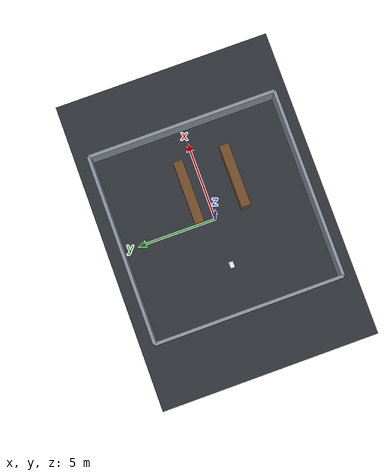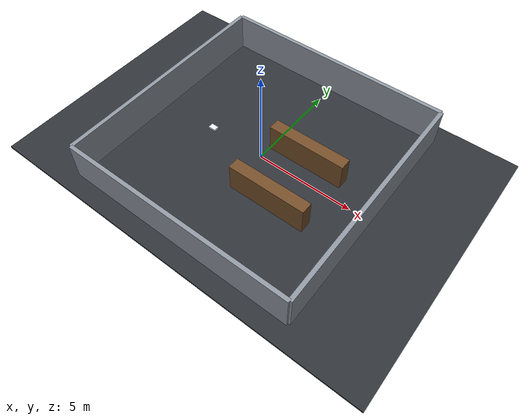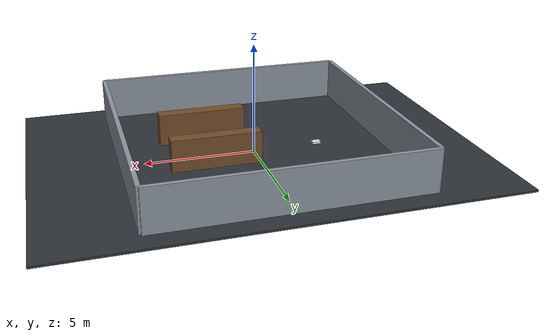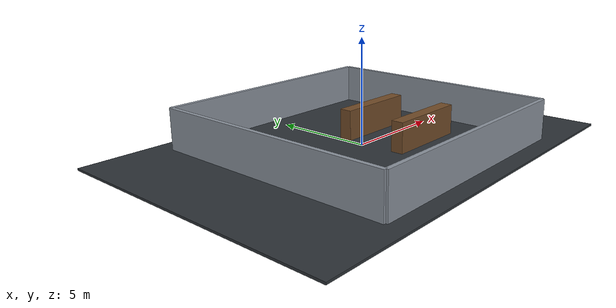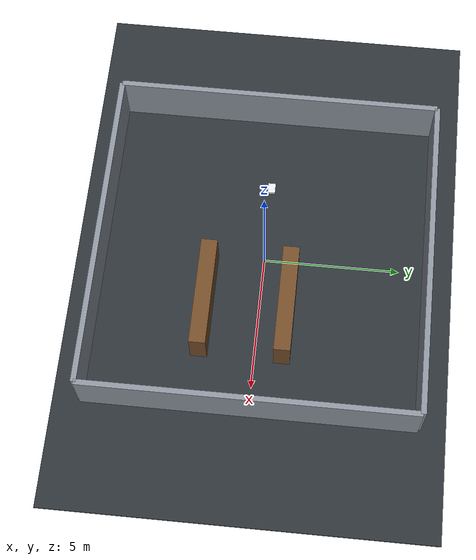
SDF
<?xml version="1.0"?>
<sdf version="1.10"><world name="openpatrol_warehouse">
  <physics name="1ms" type="ignored"><max_step_size>0.001</max_step_size><real_time_factor>1</real_time_factor></physics>
  <plugin filename="gz-sim-physics-system" name="gz::sim::systems::Physics"/><plugin filename="gz-sim-user-commands-system" name="gz::sim::systems::UserCommands"/><plugin filename="gz-sim-scene-broadcaster-system" name="gz::sim::systems::SceneBroadcaster"/><plugin filename="gz-sim-sensors-system" name="gz::sim::systems::Sensors"><render_engine>ogre2</render_engine></plugin><plugin filename="gz-sim-imu-system" name="gz::sim::systems::Imu"/>
  <scene><ambient>.35 .35 .35 1</ambient><background>.08 .1 .12 1</background></scene>
  <light name="sun" type="directional"><pose>0 0 10 0 0 0</pose><diffuse>.8 .8 .8 1</diffuse><direction>-.4 .2 -1</direction></light>
  <model name="ground"><static>true</static><link name="link"><collision name="collision"><geometry><box><size>20 14 .1</size></box></geometry></collision><visual name="visual"><geometry><box><size>20 14 .1</size></box></geometry><material><diffuse>.18 .2 .22 1</diffuse></material></visual></link></model>
  <!-- A bounded building is essential for meaningful lidar/SLAM testing. The
       perimeter also prevents a simulated patrol from leaving the test site. -->
  <model name="north_wall"><static>true</static><pose>0 6 1 0 0 0</pose><link name="link"><collision name="collision"><geometry><box><size>12 .2 2</size></box></geometry></collision><visual name="visual"><geometry><box><size>12 .2 2</size></box></geometry><material><diffuse>.55 .58 .62 1</diffuse></material></visual></link></model>
  <model name="south_wall"><static>true</static><pose>0 -6 1 0 0 0</pose><link name="link"><collision name="collision"><geometry><box><size>12 .2 2</size></box></geometry></collision><visual name="visual"><geometry><box><size>12 .2 2</size></box></geometry><material><diffuse>.55 .58 .62 1</diffuse></material></visual></link></model>
  <model name="east_wall"><static>true</static><pose>6 0 1 0 0 0</pose><link name="link"><collision name="collision"><geometry><box><size>.2 12 2</size></box></geometry></collision><visual name="visual"><geometry><box><size>.2 12 2</size></box></geometry><material><diffuse>.55 .58 .62 1</diffuse></material></visual></link></model>
  <model name="west_wall"><static>true</static><pose>-6 0 1 0 0 0</pose><link name="link"><collision name="collision"><geometry><box><size>.2 12 2</size></box></geometry></collision><visual name="visual"><geometry><box><size>.2 12 2</size></box></geometry><material><diffuse>.55 .58 .62 1</diffuse></material></visual></link></model>
  <model name="shelf_a"><static>true</static><pose>2 1 .75 0 0 0</pose><link name="link"><collision name="collision"><geometry><box><size>4 .6 1.5</size></box></geometry></collision><visual name="visual"><geometry><box><size>4 .6 1.5</size></box></geometry><material><diffuse>.45 .3 .16 1</diffuse></material></visual></link></model>
  <model name="shelf_b"><static>true</static><pose>2 -2 .75 0 0 0</pose><link name="link"><collision name="collision"><geometry><box><size>4 .6 1.5</size></box></geometry></collision><visual name="visual"><geometry><box><size>4 .6 1.5</size></box></geometry><material><diffuse>.45 .3 .16 1</diffuse></material></visual></link></model>
  <include><uri>../models/openpatrol</uri><pose>-3 0 0 0 0 0</pose></include>
</world></sdf>

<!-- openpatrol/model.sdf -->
<sdf version="1.10"><model name="openpatrol">
  <!-- Rover One Rev A geometry: 420 x 300 mm structural deck, 100 mm wheels. -->
  <pose>0 0 0.08 0 0 0</pose>
  <frame name="lidar_frame" attached_to="base_link"><pose>0.05 0 0.17 0 0 0</pose></frame>
  <link name="base_link">
    <inertial><mass>10.5</mass><inertia><ixx>0.14</ixx><iyy>0.22</iyy><izz>0.31</izz></inertia></inertial>
    <collision name="body_collision"><geometry><box><size>0.42 0.30 0.12</size></box></geometry></collision>
    <visual name="body_visual"><geometry><box><size>0.42 0.30 0.12</size></box></geometry><material><diffuse>0.72 0.75 0.77 1</diffuse></material></visual>
    <visual name="cover_visual"><pose>0 0 0.105 0 0 0</pose><geometry><box><size>0.39 0.275 0.09</size></box></geometry><material><diffuse>0.90 0.91 0.92 1</diffuse></material></visual>
    <sensor name="imu" type="imu"><always_on>true</always_on><update_rate>100</update_rate><topic>/imu</topic><gz_frame_id>base_link</gz_frame_id></sensor>
    <sensor name="lidar" type="gpu_lidar"><pose relative_to="lidar_frame">0 0 0 0 0 0</pose><always_on>true</always_on><visualize>true</visualize><update_rate>10</update_rate><topic>/scan</topic><gz_frame_id>base_link</gz_frame_id><ray><scan><horizontal><samples>360</samples><resolution>1</resolution><min_angle>-3.14159</min_angle><max_angle>3.14159</max_angle></horizontal><vertical><samples>1</samples><resolution>1</resolution><min_angle>0</min_angle><max_angle>0</max_angle></vertical></scan><range><min>0.12</min><max>12</max><resolution>0.01</resolution></range><noise><type>gaussian</type><mean>0</mean><stddev>0.01</stddev></noise></ray></sensor>
    <sensor name="front_camera" type="camera"><pose>0.22 0 0.10 0 0 0</pose><always_on>true</always_on><update_rate>15</update_rate><topic>/camera/image_raw</topic><camera><horizontal_fov>1.4</horizontal_fov><image><width>640</width><height>360</height><format>R8G8B8</format></image><clip><near>0.1</near><far>30</far></clip><noise><type>gaussian</type><mean>0</mean><stddev>0.007</stddev></noise></camera></sensor>
  </link>
  <link name="left_front_wheel"><pose>0.13 0.17 -0.03 1.5708 0 0</pose><inertial><mass>0.35</mass><inertia><ixx>.0005</ixx><iyy>.0005</iyy><izz>.0005</izz></inertia></inertial><collision name="collision"><geometry><cylinder><radius>.05</radius><length>.04</length></cylinder></geometry><surface><friction><ode><mu>1.0</mu><mu2>1.0</mu2></ode></friction></surface></collision><visual name="visual"><geometry><cylinder><radius>.05</radius><length>.04</length></cylinder></geometry><material><diffuse>.05 .05 .05 1</diffuse></material></visual></link>
  <link name="left_rear_wheel"><pose>-0.13 0.17 -0.03 1.5708 0 0</pose><inertial><mass>0.35</mass><inertia><ixx>.0005</ixx><iyy>.0005</iyy><izz>.0005</izz></inertia></inertial><collision name="collision"><geometry><cylinder><radius>.05</radius><length>.04</length></cylinder></geometry><surface><friction><ode><mu>1.0</mu><mu2>1.0</mu2></ode></friction></surface></collision><visual name="visual"><geometry><cylinder><radius>.05</radius><length>.04</length></cylinder></geometry><material><diffuse>.05 .05 .05 1</diffuse></material></visual></link>
  <link name="right_front_wheel"><pose>0.13 -0.17 -0.03 1.5708 0 0</pose><inertial><mass>0.35</mass><inertia><ixx>.0005</ixx><iyy>.0005</iyy><izz>.0005</izz></inertia></inertial><collision name="collision"><geometry><cylinder><radius>.05</radius><length>.04</length></cylinder></geometry><surface><friction><ode><mu>1.0</mu><mu2>1.0</mu2></ode></friction></surface></collision><visual name="visual"><geometry><cylinder><radius>.05</radius><length>.04</length></cylinder></geometry><material><diffuse>.05 .05 .05 1</diffuse></material></visual></link>
  <link name="right_rear_wheel"><pose>-0.13 -0.17 -0.03 1.5708 0 0</pose><inertial><mass>0.35</mass><inertia><ixx>.0005</ixx><iyy>.0005</iyy><izz>.0005</izz></inertia></inertial><collision name="collision"><geometry><cylinder><radius>.05</radius><length>.04</length></cylinder></geometry><surface><friction><ode><mu>1.0</mu><mu2>1.0</mu2></ode></friction></surface></collision><visual name="visual"><geometry><cylinder><radius>.05</radius><length>.04</length></cylinder></geometry><material><diffuse>.05 .05 .05 1</diffuse></material></visual></link>
  <joint name="left_front_joint" type="revolute"><parent>base_link</parent><child>left_front_wheel</child><axis><xyz>0 1 0</xyz></axis></joint>
  <joint name="left_rear_joint" type="revolute"><parent>base_link</parent><child>left_rear_wheel</child><axis><xyz>0 1 0</xyz></axis></joint>
  <joint name="right_front_joint" type="revolute"><parent>base_link</parent><child>right_front_wheel</child><axis><xyz>0 1 0</xyz></axis></joint>
  <joint name="right_rear_joint" type="revolute"><parent>base_link</parent><child>right_rear_wheel</child><axis><xyz>0 1 0</xyz></axis></joint>
  <plugin filename="gz-sim-diff-drive-system" name="gz::sim::systems::DiffDrive">
    <left_joint>left_front_joint</left_joint><left_joint>left_rear_joint</left_joint>
    <right_joint>right_front_joint</right_joint><right_joint>right_rear_joint</right_joint>
    <wheel_separation>0.34</wheel_separation><wheel_radius>0.05</wheel_radius>
    <topic>/cmd_vel_safe</topic><odom_topic>/odom</odom_topic><tf_topic>/tf</tf_topic><frame_id>odom</frame_id><child_frame_id>base_link</child_frame_id>
    <max_linear_velocity>0.45</max_linear_velocity><max_angular_velocity>1.0</max_angular_velocity>
  </plugin>
</model></sdf>
